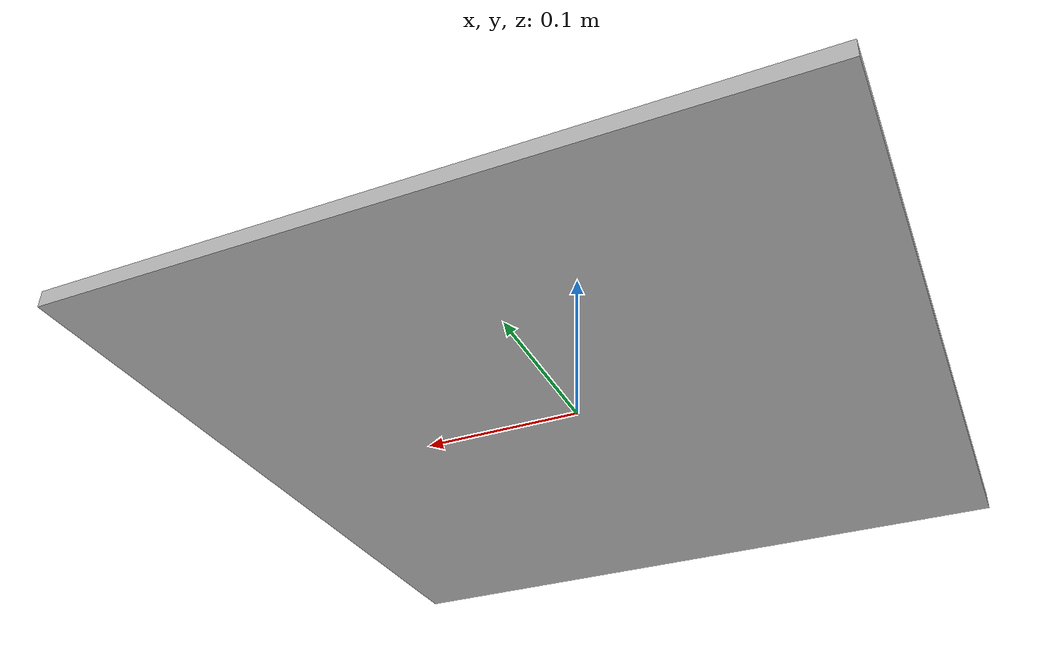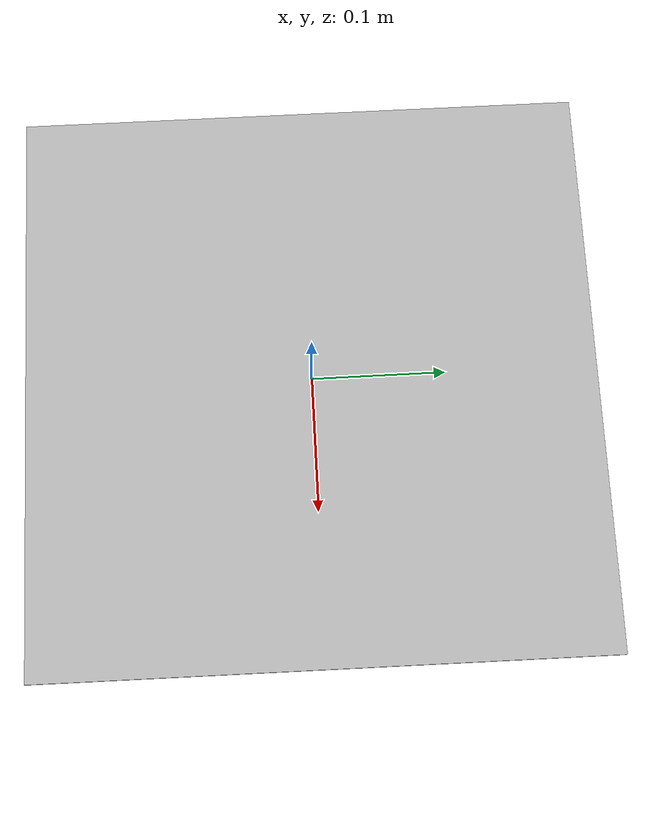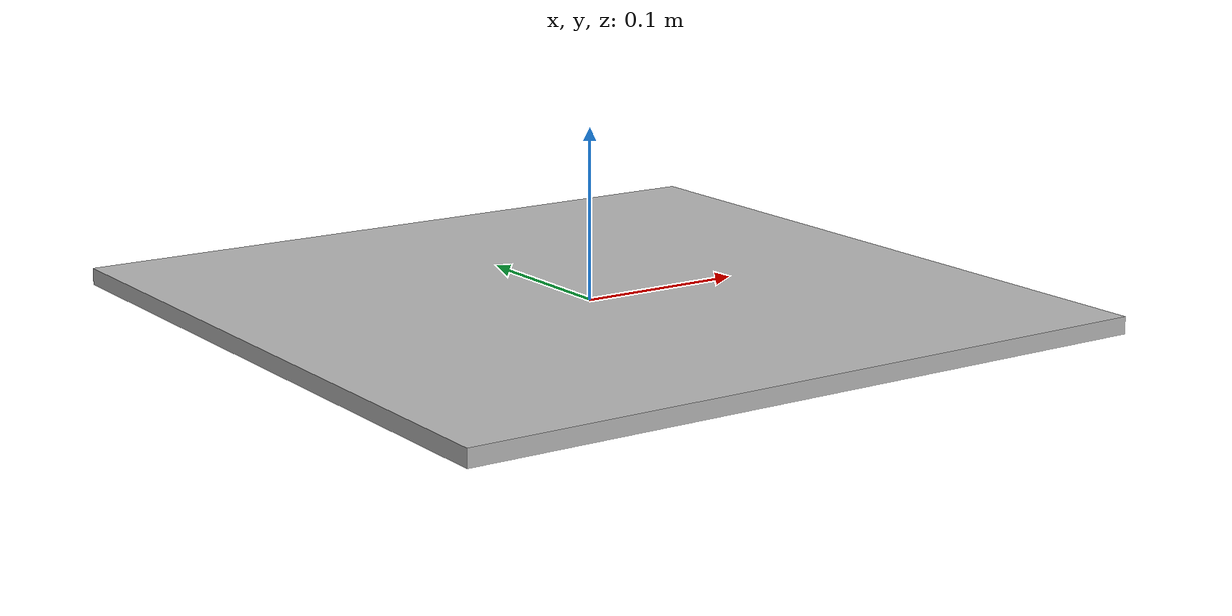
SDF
<?xml version="1.0" ?>
<sdf version="1.5">
  <model name="Aruco">
    <static>true</static>
    <link name="link">
      <collision name="collision">
        <geometry>
          <box>
            <size>0.425 0.425 0.01</size>
          </box>
        </geometry>
      </collision>
      <visual name="visual">
        <cast_shadows>false</cast_shadows>
        <geometry>
          <box>
            <size>0.425 0.425 0.01</size>
          </box>
        </geometry>
        <material>
          <script>
            <uri>model://Aruco/materials/scripts</uri>
            <uri>model://Aruco/materials/textures</uri>
            <name>aruco</name>
          </script>
        </material>
      </visual>
    </link>
  </model>
</sdf>
